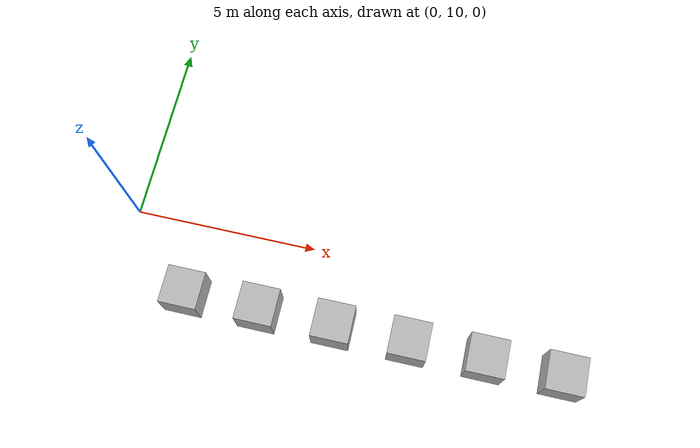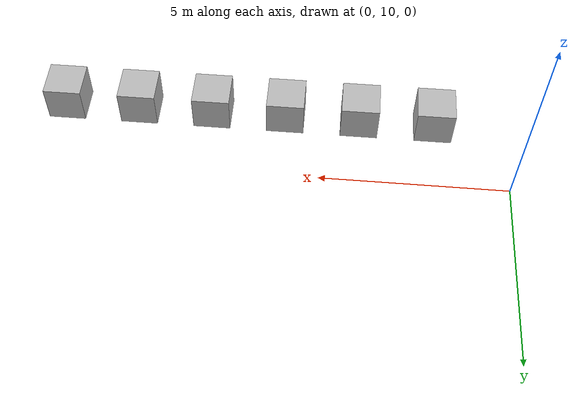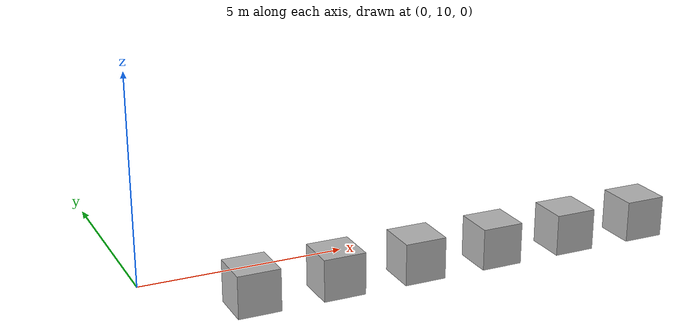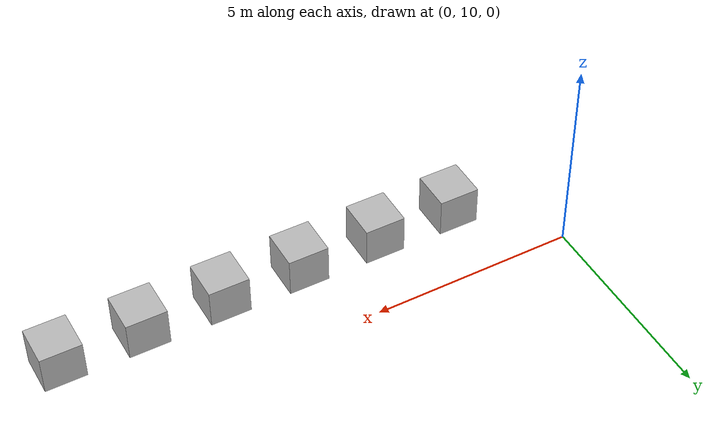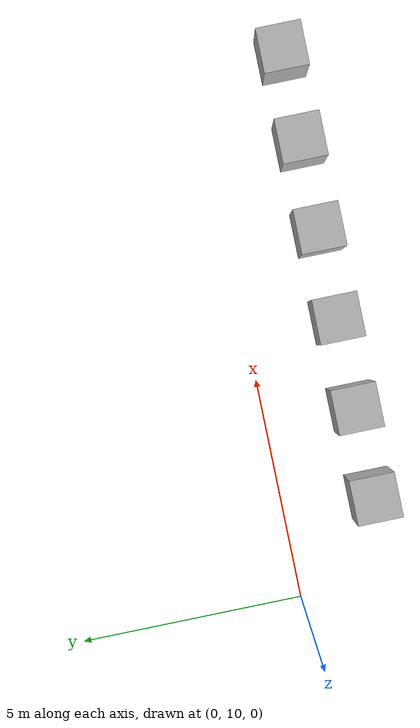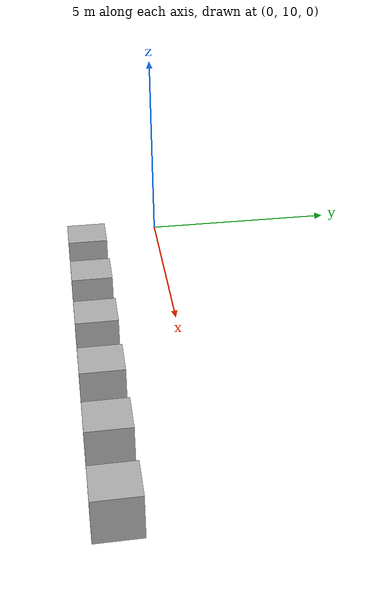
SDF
<sdf version="1.4">
    <world name="default">
      <scene>
        <ambient>1.000000 1.000000 1.000000 1.000000</ambient>
        <background>0.700000 0.700000 0.700000 1.000000</background>
        <shadows>1</shadows>
      </scene>
      <physics type="ode">
        <gravity>0.000000 -1.000000 -1.000000</gravity>
        <ode>
          <solver>
            <type>quick</type>
            <iters>50</iters>
            <precon_iters>0</precon_iters>
            <sor>1.300000</sor>
          </solver>
          <constraints>
            <cfm>0.000000</cfm>
            <erp>0.200000</erp>
            <contact_max_correcting_vel>100.000000</contact_max_correcting_vel>
            <contact_surface_layer>0.001000</contact_surface_layer>
          </constraints>
        </ode>
        <real_time_update_rate>0.000000</real_time_update_rate>
        <max_step_size>0.001000</max_step_size>
      </physics>
      <model name="gplane">
        <pose>0.000000 0.000000 0.000000 0.000000 -0.000000 0.000000</pose>
        <link name="plane">
          <pose>0.000000 0.000000 0.000000 0.000000 -0.000000 0.000000</pose>
          <collision name="plane">
            <pose>0.000000 0.000000 0.000000 0.000000 -0.000000 0.000000</pose>
            <geometry>
              <plane>
                <normal>0.000000 0.000000 1.000000</normal>
              </plane>
            </geometry>
            <surface>
              <friction>
                <ode>
                  <mu>50.000000</mu>
                  <mu2>50.000000</mu2>
                  <fdir1>0.000000 0.000000 0.000000</fdir1>
                  <slip1>0.000000</slip1>
                  <slip2>0.000000</slip2>
                </ode>
              </friction>
              <bounce>
                <restitution_coefficient>0.000000</restitution_coefficient>
                <threshold>100000.000000</threshold>
              </bounce>
              <contact>
                <ode>
                  <soft_cfm>0.000000</soft_cfm>
                  <soft_erp>0.200000</soft_erp>
                  <kp>1000000000.000000</kp>
                  <kd>1.000000</kd>
                  <max_vel>100.000000</max_vel>
                  <min_depth>0.001000</min_depth>
                </ode>
              </contact>
            </surface>
            <laser_retro>0.000000</laser_retro>
          </collision>
          <gravity>1</gravity>
          <self_collide>0</self_collide>
          <kinematic>0</kinematic>
        </link>
        <static>1</static>
      </model>
      <model name="box_01_model">
        <allow_auto_disable>0</allow_auto_disable>
        <pose>2.000000 8.000000 0.500000 0.000000 -0.000000 0.000000</pose>
        <link name="box_01_body">
          <pose>0.000000 0.000000 0.000000 0.000000 -0.000000 0.000000</pose>
          <inertial>
            <pose>0.000000 0.000000 -0.500000 0.000000 -0.000000 0.000000</pose>
            <inertia>
              <ixx>10.000000</ixx>
              <ixy>0.000000</ixy>
              <ixz>0.000000</ixz>
              <iyy>10.000000</iyy>
              <iyz>0.000000</iyz>
              <izz>10.000000</izz>
            </inertia>
            <mass>1.000000</mass>
          </inertial>
          <collision name="box_01_geom">
            <pose>0.000000 0.000000 0.000000 0.000000 -0.000000 0.000000</pose>
            <geometry>
              <box>
                <size>1.000000 1.000000 1.000000</size>
              </box>
            </geometry>
            <surface>
              <friction>
                <ode>
                  <mu>0.998000</mu>
                  <mu2>0.998000</mu2>
                  <fdir1>0.000000 0.000000 0.000000</fdir1>
                  <slip1>0.000000</slip1>
                  <slip2>0.000000</slip2>
                </ode>
              </friction>
              <bounce>
                <restitution_coefficient>0.000000</restitution_coefficient>
                <threshold>100000.000000</threshold>
              </bounce>
              <contact>
                <ode>
                  <soft_cfm>0.000000</soft_cfm>
                  <soft_erp>0.200000</soft_erp>
                  <kp>100000.000000</kp>
                  <kd>1.000000</kd>
                  <max_vel>100.000000</max_vel>
                  <min_depth>0.001000</min_depth>
                </ode>
              </contact>
            </surface>
            <laser_retro>0.000000</laser_retro>
          </collision>
          <visual name="box_01_geom_visual">
            <pose>0.000000 0.000000 0.000000 0.000000 -0.000000 0.000000</pose>
            <geometry>
              <box>
                <size>1.000000 1.000000 1.000000</size>
              </box>
            </geometry>
            <material>
              <script>Gazebo/Rocky</script>
            </material>
            <cast_shadows>1</cast_shadows>
            <laser_retro>0.000000</laser_retro>
            <transparency>0.000000</transparency>
          </visual>
          <gravity>1</gravity>
          <self_collide>0</self_collide>
          <kinematic>0</kinematic>
        </link>
        <static>0</static>
      </model>
      <model name="box_02_model">
        <allow_auto_disable>0</allow_auto_disable>
        <pose>4.000000 8.000000 0.500000 0.000000 -0.000000 0.000000</pose>
        <link name="box_02_body">
          <pose>0.000000 0.000000 0.000000 0.000000 -0.000000 0.000000</pose>
          <inertial>
            <pose>0.000000 0.000000 -0.500000 0.000000 -0.000000 0.000000</pose>
            <inertia>
              <ixx>10.000000</ixx>
              <ixy>0.000000</ixy>
              <ixz>0.000000</ixz>
              <iyy>10.000000</iyy>
              <iyz>0.000000</iyz>
              <izz>10.000000</izz>
            </inertia>
            <mass>1.000000</mass>
          </inertial>
          <collision name="box_02_geom">
            <pose>0.000000 0.000000 0.000000 0.000000 -0.000000 0.000000</pose>
            <geometry>
              <box>
                <size>1.000000 1.000000 1.000000</size>
              </box>
            </geometry>
            <surface>
              <friction>
                <ode>
                  <mu>0.998500</mu>
                  <mu2>0.998500</mu2>
                  <fdir1>0.000000 0.000000 0.000000</fdir1>
                  <slip1>0.000000</slip1>
                  <slip2>0.000000</slip2>
                </ode>
              </friction>
              <bounce>
                <restitution_coefficient>0.000000</restitution_coefficient>
                <threshold>100000.000000</threshold>
              </bounce>
              <contact>
                <ode>
                  <soft_cfm>0.000000</soft_cfm>
                  <soft_erp>0.200000</soft_erp>
                  <kp>100000.000000</kp>
                  <kd>1.000000</kd>
                  <max_vel>100.000000</max_vel>
                  <min_depth>0.001000</min_depth>
                </ode>
              </contact>
            </surface>
            <laser_retro>0.000000</laser_retro>
          </collision>
          <visual name="box_02_geom_visual">
            <pose>0.000000 0.000000 0.000000 0.000000 -0.000000 0.000000</pose>
            <geometry>
              <box>
                <size>1.000000 1.000000 1.000000</size>
              </box>
            </geometry>
            <material>
              <script>Gazebo/Rocky</script>
            </material>
            <cast_shadows>1</cast_shadows>
            <laser_retro>0.000000</laser_retro>
            <transparency>0.000000</transparency>
          </visual>
          <gravity>1</gravity>
          <self_collide>0</self_collide>
          <kinematic>0</kinematic>
        </link>
        <static>0</static>
      </model>
      <model name="box_03_model">
        <allow_auto_disable>0</allow_auto_disable>
        <pose>6.000000 8.000000 0.500000 0.000000 -0.000000 0.000000</pose>
        <link name="box_03_body">
          <pose>0.000000 0.000000 0.000000 0.000000 -0.000000 0.000000</pose>
          <inertial>
            <pose>0.000000 0.000000 -0.500000 0.000000 -0.000000 0.000000</pose>
            <inertia>
              <ixx>10.000000</ixx>
              <ixy>0.000000</ixy>
              <ixz>0.000000</ixz>
              <iyy>10.000000</iyy>
              <iyz>0.000000</iyz>
              <izz>10.000000</izz>
            </inertia>
            <mass>1.000000</mass>
          </inertial>
          <collision name="box_03_geom">
            <pose>0.000000 0.000000 0.000000 0.000000 -0.000000 0.000000</pose>
            <geometry>
              <box>
                <size>1.000000 1.000000 1.000000</size>
              </box>
            </geometry>
            <surface>
              <friction>
                <ode>
                  <mu>0.999000</mu>
                  <mu2>0.999000</mu2>
                  <fdir1>0.000000 0.000000 0.000000</fdir1>
                  <slip1>0.000000</slip1>
                  <slip2>0.000000</slip2>
                </ode>
              </friction>
              <bounce>
                <restitution_coefficient>0.000000</restitution_coefficient>
                <threshold>100000.000000</threshold>
              </bounce>
              <contact>
                <ode>
                  <soft_cfm>0.000000</soft_cfm>
                  <soft_erp>0.200000</soft_erp>
                  <kp>100000.000000</kp>
                  <kd>1.000000</kd>
                  <max_vel>100.000000</max_vel>
                  <min_depth>0.001000</min_depth>
                </ode>
              </contact>
            </surface>
            <laser_retro>0.000000</laser_retro>
          </collision>
          <visual name="box_03_geom_visual">
            <pose>0.000000 0.000000 0.000000 0.000000 -0.000000 0.000000</pose>
            <geometry>
              <box>
                <size>1.000000 1.000000 1.000000</size>
              </box>
            </geometry>
            <material>
              <script>Gazebo/Rocky</script>
            </material>
            <cast_shadows>1</cast_shadows>
            <laser_retro>0.000000</laser_retro>
            <transparency>0.000000</transparency>
          </visual>
          <gravity>1</gravity>
          <self_collide>0</self_collide>
          <kinematic>0</kinematic>
        </link>
        <static>0</static>
      </model>
      <model name="box_04_model">
        <allow_auto_disable>0</allow_auto_disable>
        <pose>8.000000 8.000000 0.500000 0.000000 -0.000000 0.000000</pose>
        <link name="box_04_body">
          <pose>0.000000 0.000000 0.000000 0.000000 -0.000000 0.000000</pose>
          <inertial>
            <pose>0.000000 0.000000 -0.500000 0.000000 -0.000000 0.000000</pose>
            <inertia>
              <ixx>10.000000</ixx>
              <ixy>0.000000</ixy>
              <ixz>0.000000</ixz>
              <iyy>10.000000</iyy>
              <iyz>0.000000</iyz>
              <izz>10.000000</izz>
            </inertia>
            <mass>1.000000</mass>
          </inertial>
          <collision name="box_04_geom">
            <pose>0.000000 0.000000 0.000000 0.000000 -0.000000 0.000000</pose>
            <geometry>
              <box>
                <size>1.000000 1.000000 1.000000</size>
              </box>
            </geometry>
            <surface>
              <friction>
                <ode>
                  <mu>0.999500</mu>
                  <mu2>0.999500</mu2>
                  <fdir1>0.000000 0.000000 0.000000</fdir1>
                  <slip1>0.000000</slip1>
                  <slip2>0.000000</slip2>
                </ode>
              </friction>
              <bounce>
                <restitution_coefficient>0.000000</restitution_coefficient>
                <threshold>100000.000000</threshold>
              </bounce>
              <contact>
                <ode>
                  <soft_cfm>0.000000</soft_cfm>
                  <soft_erp>0.200000</soft_erp>
                  <kp>100000.000000</kp>
                  <kd>1.000000</kd>
                  <max_vel>100.000000</max_vel>
                  <min_depth>0.001000</min_depth>
                </ode>
              </contact>
            </surface>
            <laser_retro>0.000000</laser_retro>
          </collision>
          <visual name="box_04_geom_visual">
            <pose>0.000000 0.000000 0.000000 0.000000 -0.000000 0.000000</pose>
            <geometry>
              <box>
                <size>1.000000 1.000000 1.000000</size>
              </box>
            </geometry>
            <material>
              <script>Gazebo/Rocky</script>
            </material>
            <cast_shadows>1</cast_shadows>
            <laser_retro>0.000000</laser_retro>
            <transparency>0.000000</transparency>
          </visual>
          <gravity>1</gravity>
          <self_collide>0</self_collide>
          <kinematic>0</kinematic>
        </link>
        <static>0</static>
      </model>
      <model name="box_05_model">
        <allow_auto_disable>0</allow_auto_disable>
        <pose>10.000000 8.000000 0.500000 0.000000 -0.000000 0.000000</pose>
        <link name="box_05_body">
          <pose>0.000000 0.000000 0.000000 0.000000 -0.000000 0.000000</pose>
          <inertial>
            <pose>0.000000 0.000000 -0.500000 0.000000 -0.000000 0.000000</pose>
            <inertia>
              <ixx>10.000000</ixx>
              <ixy>0.000000</ixy>
              <ixz>0.000000</ixz>
              <iyy>10.000000</iyy>
              <iyz>0.000000</iyz>
              <izz>10.000000</izz>
            </inertia>
            <mass>1.000000</mass>
          </inertial>
          <collision name="box_05_geom">
            <pose>0.000000 0.000000 0.000000 0.000000 -0.000000 0.000000</pose>
            <geometry>
              <box>
                <size>1.000000 1.000000 1.000000</size>
              </box>
            </geometry>
            <surface>
              <friction>
                <ode>
                  <mu>1.000000</mu>
                  <mu2>1.000000</mu2>
                  <fdir1>0.000000 0.000000 0.000000</fdir1>
                  <slip1>0.000000</slip1>
                  <slip2>0.000000</slip2>
                </ode>
              </friction>
              <bounce>
                <restitution_coefficient>0.000000</restitution_coefficient>
                <threshold>100000.000000</threshold>
              </bounce>
              <contact>
                <ode>
                  <soft_cfm>0.000000</soft_cfm>
                  <soft_erp>0.200000</soft_erp>
                  <kp>100000.000000</kp>
                  <kd>1.000000</kd>
                  <max_vel>100.000000</max_vel>
                  <min_depth>0.001000</min_depth>
                </ode>
              </contact>
            </surface>
            <laser_retro>0.000000</laser_retro>
          </collision>
          <visual name="box_05_geom_visual">
            <pose>0.000000 0.000000 0.000000 0.000000 -0.000000 0.000000</pose>
            <geometry>
              <box>
                <size>1.000000 1.000000 1.000000</size>
              </box>
            </geometry>
            <material>
              <script>Gazebo/Rocky</script>
            </material>
            <cast_shadows>1</cast_shadows>
            <laser_retro>0.000000</laser_retro>
            <transparency>0.000000</transparency>
          </visual>
          <gravity>1</gravity>
          <self_collide>0</self_collide>
          <kinematic>0</kinematic>
        </link>
        <static>0</static>
      </model>
      <model name="box_06_model">
        <allow_auto_disable>0</allow_auto_disable>
        <pose>12.000000 8.000000 0.500000 0.000000 -0.000000 0.000000</pose>
        <link name="box_06_body">
          <pose>0.000000 0.000000 0.000000 0.000000 -0.000000 0.000000</pose>
          <inertial>
            <pose>0.000000 0.000000 -0.500000 0.000000 -0.000000 0.000000</pose>
            <inertia>
              <ixx>10.000000</ixx>
              <ixy>0.000000</ixy>
              <ixz>0.000000</ixz>
              <iyy>10.000000</iyy>
              <iyz>0.000000</iyz>
              <izz>10.000000</izz>
            </inertia>
            <mass>1.000000</mass>
          </inertial>
          <collision name="box_06_geom">
            <pose>0.000000 0.000000 0.000000 0.000000 -0.000000 0.000000</pose>
            <geometry>
              <box>
                <size>1.000000 1.000000 1.000000</size>
              </box>
            </geometry>
            <surface>
              <friction>
                <ode>
                  <mu>1.010000</mu>
                  <mu2>1.010000</mu2>
                  <fdir1>0.000000 0.000000 0.000000</fdir1>
                  <slip1>0.000000</slip1>
                  <slip2>0.000000</slip2>
                </ode>
              </friction>
              <bounce>
                <restitution_coefficient>0.000000</restitution_coefficient>
                <threshold>100000.000000</threshold>
              </bounce>
              <contact>
                <ode>
                  <soft_cfm>0.000000</soft_cfm>
                  <soft_erp>0.200000</soft_erp>
                  <kp>100000.000000</kp>
                  <kd>1.000000</kd>
                  <max_vel>100.000000</max_vel>
                  <min_depth>0.001000</min_depth>
                </ode>
              </contact>
            </surface>
            <laser_retro>0.000000</laser_retro>
          </collision>
          <visual name="box_06_geom_visual">
            <pose>0.000000 0.000000 0.000000 0.000000 -0.000000 0.000000</pose>
            <geometry>
              <box>
                <size>1.000000 1.000000 1.000000</size>
              </box>
            </geometry>
            <material>
              <script>Gazebo/Rocky</script>
            </material>
            <cast_shadows>1</cast_shadows>
            <laser_retro>0.000000</laser_retro>
            <transparency>0.000000</transparency>
          </visual>
          <gravity>1</gravity>
          <self_collide>0</self_collide>
          <kinematic>0</kinematic>
        </link>
        <static>0</static>
      </model>
    </world>
  </sdf>
